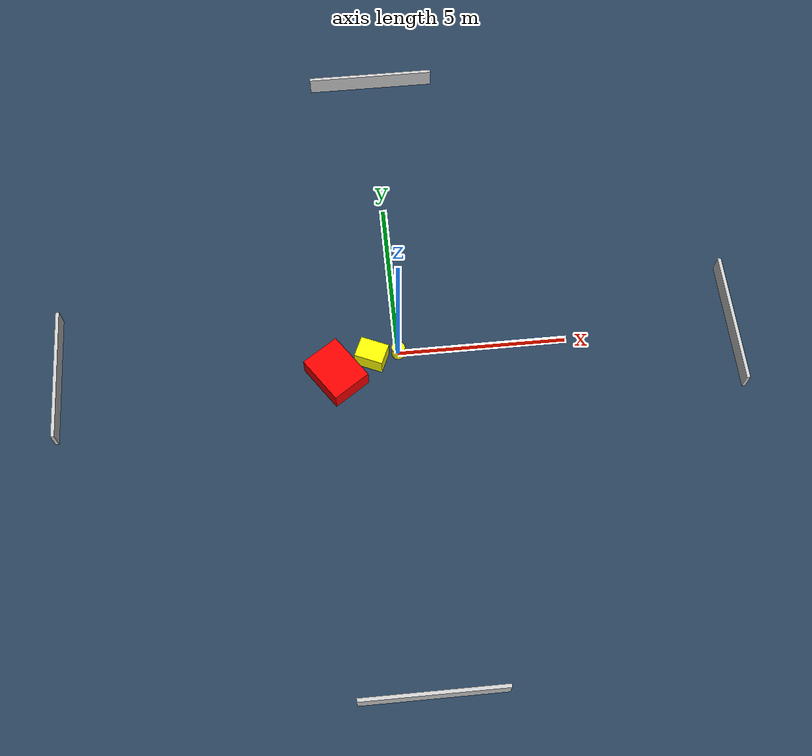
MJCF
<?xml version="1.0" ?>
<mujoco model="generated_environment">
  <option timestep="0.01" integrator="RK4" cone="elliptic"/>
  <default>
    <geom density="1"/>
  </default>
  <asset>
    <texture builtin="gradient" height="3072" name="skybox" rgb1="0.3 0.5 0.7" rgb2="0 0 0" type="skybox" width="512"/>
    <texture builtin="checker" height="300" name="groundplane" rgb1="0.2 0.3 0.4" rgb2="0.1 0.2 0.3" type="2d" width="300"/>
    <material name="groundplane" reflectance="0.2" texrepeat="5 5" texture="groundplane"/>
  </asset>
  <worldbody>
    <light dir="0 0 -1" directional="true" pos="0 0 1.5"/>
    <geom condim="3" friction="0.5 0.005 0.001" material="groundplane" name="floor" pos="0 0 0" size="0 0 0.05" type="plane"/>
    <body name="walls">
      <geom name="wall_1" condim="4" pos="-10.0 0.0 0.3" rgba="0.800000011920929 0.800000011920929 0.800000011920929 1.0" size="0.05 2.0 0.3" type="box"/>
      <geom name="wall_2" condim="4" pos="10.0 0.0 0.3" rgba="0.800000011920929 0.800000011920929 0.800000011920929 1.0" size="0.05 2.0 0.3" type="box"/>
      <geom name="wall_3" condim="4" pos="0.0 -10.0 0.3" rgba="0.800000011920929 0.800000011920929 0.800000011920929 1.0" size="2.0 0.05 0.3" type="box"/>
      <geom name="wall_4" condim="4" pos="0.0 10.0 0.3" rgba="0.800000011920929 0.800000011920929 0.800000011920929 1.0" size="2.0 0.05 0.3" type="box"/>
    </body>
    <body name="robot">
      <joint name="joint_x" type="slide" pos="0 0 0" axis="1 0 0"/>
      <joint name="joint_y" type="slide" pos="0 0 0" axis="0 1 0"/>
      <geom name="robot" type="cylinder" pos="0.0 0.0 0.2" size="0.2 0.2 0.0" mass="5.0" friction="1.0 0.005 0.0001" condim="4" rgba="1.0 1.0 0.0 1.0"/>
    </body>
    <body name="obstacle_1_movable">
      <geom name="obstacle_1_movable" condim="4" pos="-0.7933175156506327 -0.11479784606167177 0.3" euler="0 0 66.1232103039458" friction="0.0 0.005 0.001" rgba="1.0 1.0 0.0 1.0" size="0.31883803678916595 0.42510753641516597 0.3" type="box" mass="0.1"/>
      <joint type="free"/>
    </body>
    <body name="obstacle_2_static">
      <geom name="obstacle_2_static" condim="4" pos="-1.8799600483521735 -0.5956162904530291 0.3" euler="0 0 214.64756295118764" friction="0.0 0.005 0.001" rgba="1.0 0.0 0.0 1.0" size="0.6013207130814002 0.7558436545365623 0.3" type="box"/>
    </body>
  </worldbody>
  <actuator>
    <motor name="actuator_x" joint="joint_x" gear="1" ctrlrange="-1 1"/>
    <motor name="actuator_y" joint="joint_y" gear="1" ctrlrange="-1 1"/>
  </actuator>
</mujoco>
